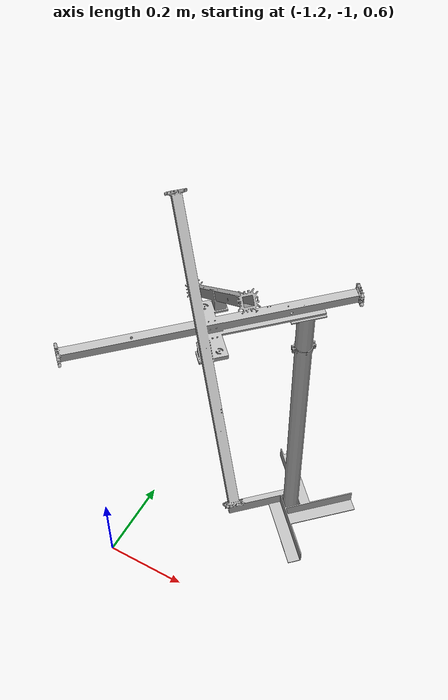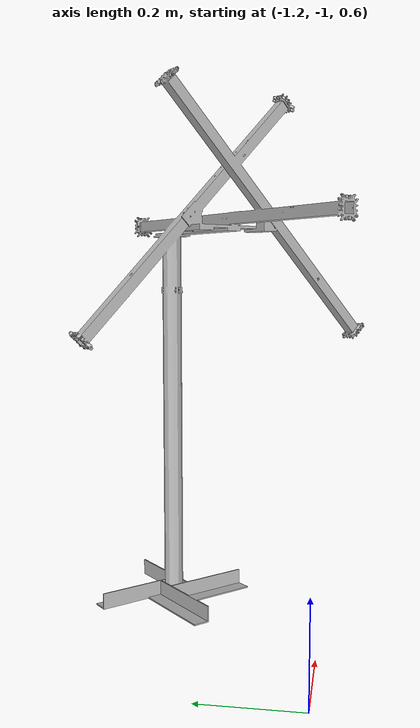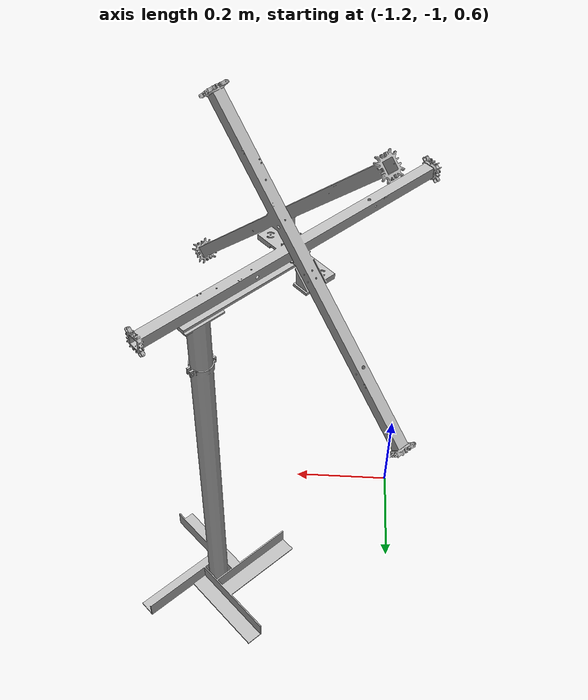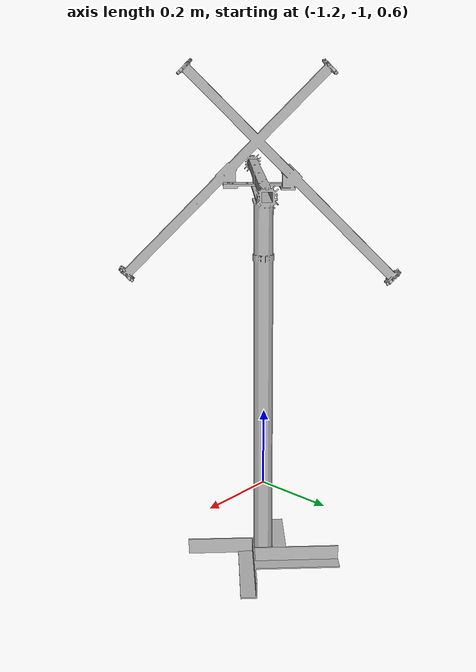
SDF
<sdf version='1.5'>
  <model name=''>
    <link name='base_link'>
      <pose frame=''>0 0 0 0 -0 0</pose>
      <inertial>
        <pose frame=''>1.34134 -1.41153 1.55667 0 -0 0</pose>
        <mass>114.95</mass>
        <inertia>
          <ixx>226.232</ixx>
          <ixy>-1.2564</ixy>
          <ixz>1.98609</ixz>
          <iyy>39.5371</iyy>
          <iyz>-57.7655</iyz>
          <izz>203.271</izz>
        </inertia>
      </inertial>
      <collision name='base_link_fixed_joint_lump__tensegrity_collision_9'>
        <pose frame=''>-0.853725 -0.69423 0.65256 0 0 0.78</pose>
        <geometry>
          <mesh>
            <scale>0.5 0.5 0.5</scale>
            <uri>meshes/tensegrity.STL</uri>
          </mesh>
        </geometry>
      </collision>
      <visual name='base_link_fixed_joint_lump__tensegrity_visual_9'>
        <pose frame=''>-0.853725 -0.69423 0.65256 0 0 0.78</pose>
        <geometry>
          <mesh>
            <scale>0.5 0.5 0.5</scale>
            <uri>meshes/tensegrity.STL</uri>
          </mesh>
        </geometry>
      </visual>
    </link>
  </model>
</sdf>
